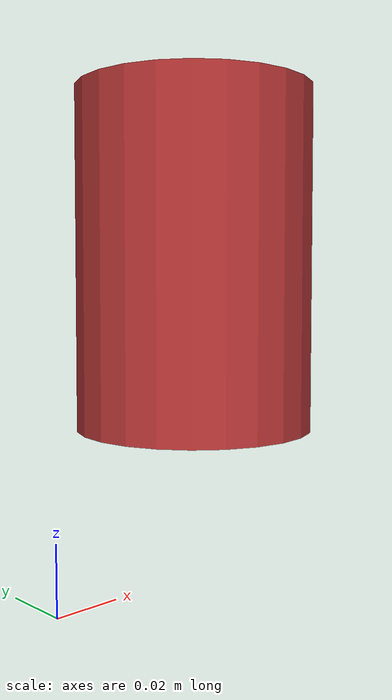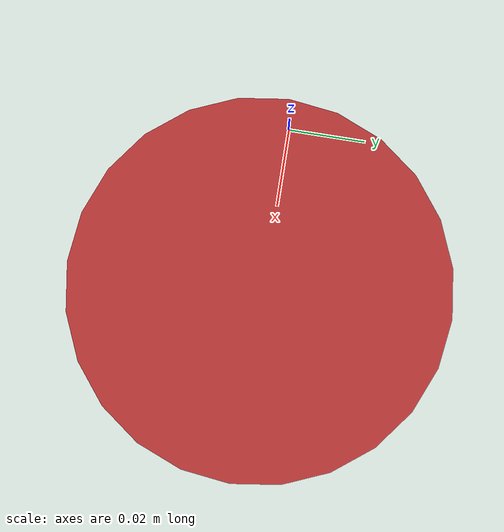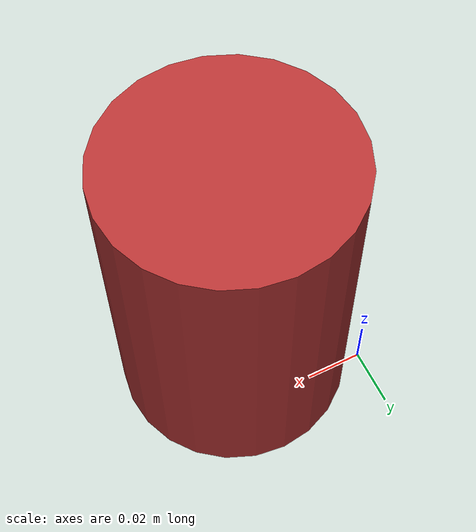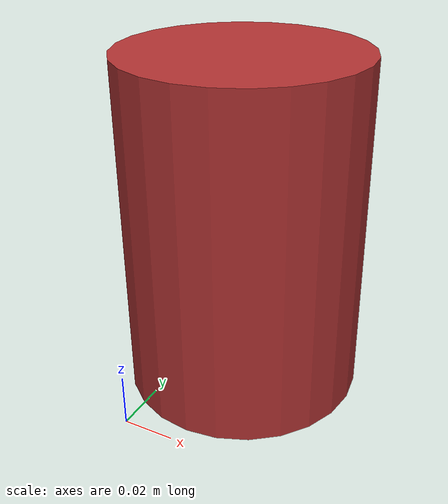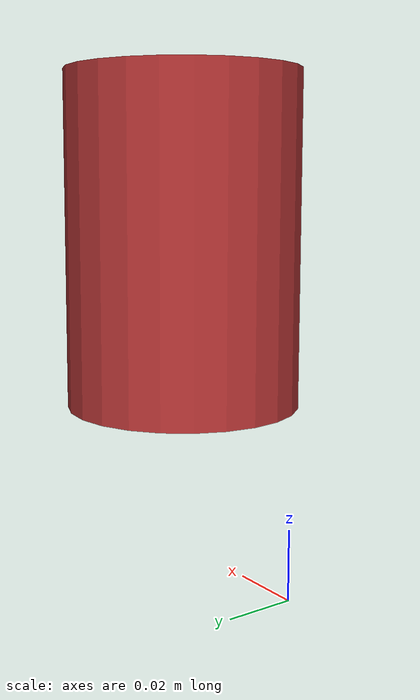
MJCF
<mujoco>
  <!-- Cylinder (like soup can: 7cm diameter, 10cm height) -->
  <worldbody>
    <body name="object" pos="0.05 0 0.095">
      <freejoint name="object_joint"/>
      <inertial pos="0 0 0" mass="0.35" diaginertia="4e-4 4e-4 2e-4"/>
      <geom name="object_geom" type="cylinder" size="0.035 0.05"
            rgba="0.7 0.2 0.2 1" contype="1" conaffinity="1"
            friction="1 0.5 0.01"/>
    </body>
  </worldbody>
</mujoco>
